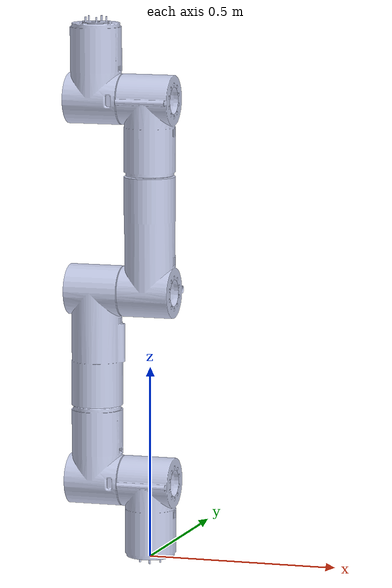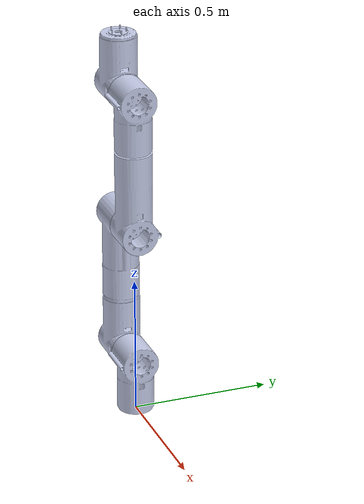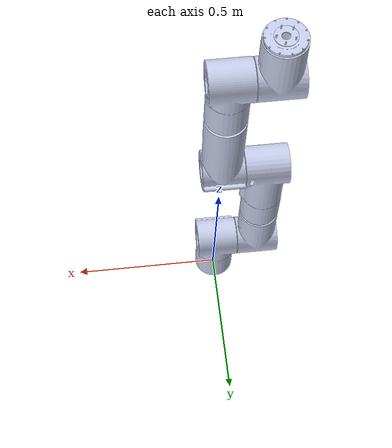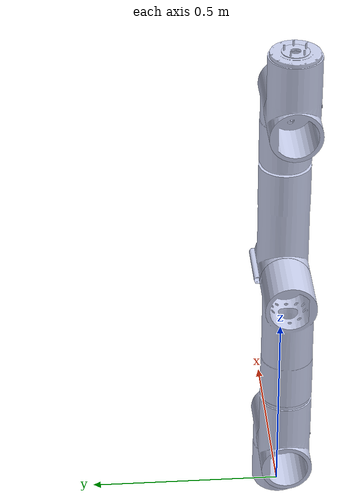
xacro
<?xml version="1.0" encoding="utf-8"?>
<robot name="mglimb_7dof" xmlns:xacro="http://www.ros.org/wiki/xacro">

<xacro:property name="ThisPackage" value="urdf_packer" />
<xacro:property name="Filename" value="mglimb_7dof" />
<xacro:property name="UrdfDataPath" value="package://${ThisPackage}/urdf/${Filename}" />
<xacro:property name="MeshPath" value="package://${ThisPackage}/meshes/${Filename}" />

  <material name="Black">
    <color rgba="0.2 0.2 0.2 0.7"/>
  </material>
  <material name="White">
    <color rgba="1.0 1.0 1.0 1.0"/>
  </material>
  <material name="Silver">
    <color rgba="0.653 0.653 0.653 1.0"/>
  </material>

  <link
  name="base_plug">
  </link>
  <joint
    name="basefix"
    type="fixed">
    <origin
      xyz="0 0 0"
      rpy="3.1416 0 0" />
    <parent
      link="base_plug" />
    <child
      link="eef1_link" />
  </joint>

  <link
    name="eef1_link">
    <inertial>
      <origin
        xyz="1.29013074179555E-07 7.84510574497553E-08 -0.00276488294745968"
        rpy="0 0 0" />
      <mass
        value="0.023752994516635" />
      <inertia
        ixx="7.776725833029E-06"
        ixy="1.92793729442485E-11"
        ixz="1.69361842652945E-11"
        iyy="7.77667085139128E-06"
        iyz="1.27496652782608E-11"
        izz="1.51480461432004E-05" />
    </inertial>
    <visual>
      <origin
        xyz="0 0 0"
        rpy="0 0 0" />
      <geometry>
        <mesh
          filename="${MeshPath}/eef1_link.STL" />
      </geometry>
      <material
        name="Black">
        <color
          rgba="0.792156862745098 0.819607843137255 0.933333333333333 1" />
      </material>
    </visual>
    <collision>
      <origin
        xyz="0 0 0"
        rpy="0 0 0" />
      <geometry>
        <mesh
          filename="${MeshPath}/eef1_link.STL" />
      </geometry>
    </collision>
  </link>
  <link
    name="link1">
    <inertial>
      <origin
        xyz="-0.000851392261437255 0.000502306553466234 -0.13561634672842"
        rpy="0 0 0" />
      <mass
        value="0.782146942513576" />
      <inertia
        ixx="0.00388029619747055"
        ixy="4.22018600087899E-06"
        ixz="0.000269392183701513"
        iyy="0.00361703953129617"
        iyz="2.03354036798432E-05"
        izz="0.00258877392358645" />
    </inertial>
    <visual>
      <origin
        xyz="0 0 0"
        rpy="0 0 0" />
      <geometry>
        <mesh
          filename="${MeshPath}/link1.STL" />
      </geometry>
      <material
        name="White">
        <color
          rgba="0.792156862745098 0.819607843137255 0.933333333333333 1" />
      </material>
    </visual>
    <collision>
      <origin
        xyz="0 0 0"
        rpy="0 0 0" />
      <geometry>
        <mesh
          filename="${MeshPath}/link1.STL" />
      </geometry>
    </collision>
  </link>
  <joint
    name="joint1"
    type="revolute">
    <origin
      xyz="0 0 0"
      rpy="0 0 0" />
    <parent
      link="eef1_link" />
    <child
      link="link1" />
    <axis
      xyz="0 0 1" />
    <limit
      lower="-3.141592"
      upper="3.141592"
      effort="10"
      velocity="10" />
  </joint>
  <link
    name="link2">
    <inertial>
      <origin
        xyz="0.0408105003144926 0.00297674224269077 0.0677917338127515"
        rpy="0 0 0" />
      <mass
        value="1.16776561398528" />
      <inertia
        ixx="0.00406810645044146"
        ixy="0.000102518031396251"
        ixz="-0.000124392967771108"
        iyy="0.00571443256075551"
        iyz="-9.48145811984983E-06"
        izz="0.00585291286623905" />
    </inertial>
    <visual>
      <origin
        xyz="0 0 0"
        rpy="0 0 0" />
      <geometry>
        <mesh
          filename="${MeshPath}/link2.STL" />
      </geometry>
      <material
        name="White">
        <color
          rgba="0.792156862745098 0.819607843137255 0.933333333333333 1" />
      </material>
    </visual>
    <collision>
      <origin
        xyz="0 0 0"
        rpy="0 0 0" />
      <geometry>
        <mesh
          filename="${MeshPath}/link2.STL" />
      </geometry>
    </collision>
  </link>
  <joint
    name="joint2"
    type="revolute">
    <origin
      xyz="-0.0725 0 -0.1971"
      rpy="3.1416 1.5708 0" />
    <parent
      link="link1" />
    <child
      link="link2" />
    <axis
      xyz="0 0 1" />
    <limit
      lower="-3.141592"
      upper="3.141592"
      effort="10"
      velocity="10" />
  </joint>
  <link
    name="link3">
    <inertial>
      <origin
        xyz="-0.00214588509326616 0.00119225730369518 0.162842874508915"
        rpy="0 0 0" />
      <mass
        value="2.91559633558469" />
      <inertia
        ixx="0.0148569440007064"
        ixy="-5.80390603936369E-06"
        ixz="0.000239584257521375"
        iyy="0.0147607356210609"
        iyz="-0.000244855992056839"
        izz="0.00922276007974285" />
    </inertial>
    <visual>
      <origin
        xyz="0 0 0"
        rpy="0 0 0" />
      <geometry>
        <mesh
          filename="${MeshPath}/link3.STL" />
      </geometry>
      <material
        name="White">
        <color
          rgba="0.792156862745098 0.819607843137255 0.933333333333333 1" />
      </material>
    </visual>
    <collision>
      <origin
        xyz="0 0 0"
        rpy="0 0 0" />
      <geometry>
        <mesh
          filename="${MeshPath}/link3.STL" />
      </geometry>
    </collision>
  </link>
  <joint
    name="joint3"
    type="revolute">
    <origin
      xyz="0.1971 0 0.0726"
      rpy="3.1415 -1.5708 0" />
    <parent
      link="link2" />
    <child
      link="link3" />
    <axis
      xyz="0 0 1" />
    <limit
      lower="-3.141592"
      upper="3.141592"
      effort="10"
      velocity="10" />
  </joint>
  <link
    name="link4">
    <inertial>
      <origin
        xyz="-0.16149366533282 -0.000165216661479077 -0.0722429668582283"
        rpy="0 0 0" />
      <mass
        value="2.49177490349903" />
      <inertia
        ixx="0.00765185163933554"
        ixy="3.84544984579443E-05"
        ixz="0.000481031406372384"
        iyy="0.0101234880737109"
        iyz="2.68345266050994E-06"
        izz="0.0103594575433918" />
    </inertial>
    <visual>
      <origin
        xyz="0 0 0"
        rpy="0 0 0" />
      <geometry>
        <mesh
          filename="${MeshPath}/link4.STL" />
      </geometry>
      <material
        name="White">
        <color
          rgba="0.792156862745098 0.819607843137255 0.933333333333333 1" />
      </material>
    </visual>
    <collision>
      <origin
        xyz="0 0 0"
        rpy="0 0 0" />
      <geometry>
        <mesh
          filename="${MeshPath}/link4.STL" />
      </geometry>
    </collision>
  </link>
  <joint
    name="joint4"
    type="revolute">
    <origin
      xyz="-0.0726 0 0.3026"
      rpy="0 1.5708 0" />
    <parent
      link="link3" />
    <child
      link="link4" />
    <axis
      xyz="0 0 1" />
    <limit
      lower="-3.141592"
      upper="3.141592"
      effort="10"
      velocity="10" />
  </joint>
  <link
    name="link5">
    <inertial>
      <origin
        xyz="-0.000851392261433597 0.000502306553460058 -0.13561634672842"
        rpy="0 0 0" />
      <mass
        value="0.782146942513575" />
      <inertia
        ixx="0.00388029619747055"
        ixy="4.22018600087864E-06"
        ixz="0.000269392183701513"
        iyy="0.00361703953129617"
        iyz="2.03354036798419E-05"
        izz="0.00258877392358645" />
    </inertial>
    <visual>
      <origin
        xyz="0 0 0"
        rpy="0 0 0" />
      <geometry>
        <mesh
          filename="${MeshPath}/link5.STL" />
      </geometry>
      <material
        name="White">
        <color
          rgba="0.792156862745098 0.819607843137255 0.933333333333333 1" />
      </material>
    </visual>
    <collision>
      <origin
        xyz="0 0 0"
        rpy="0 0 0" />
      <geometry>
        <mesh
          filename="${MeshPath}/link5.STL" />
      </geometry>
    </collision>
  </link>
  <joint
    name="joint5"
    type="revolute">
    <origin
      xyz="-0.3026 0 -0.0725"
      rpy="0 1.5708 0" />
    <parent
      link="link4" />
    <child
      link="link5" />
    <axis
      xyz="0 0 1" />
    <limit
      lower="-3.141592"
      upper="3.141592"
      effort="10"
      velocity="10" />
  </joint>
  <link
    name="link6">
    <inertial>
      <origin
        xyz="0.0408105002632231 0.00297674223999824 0.0677917336264018"
        rpy="0 0 0" />
      <mass
        value="1.16776561679624" />
      <inertia
        ixx="0.00406810645112587"
        ixy="0.000102518031254211"
        ixz="-0.000124392967409067"
        iyy="0.00571443256199961"
        iyz="-9.48145808718355E-06"
        izz="0.00585291286795255" />
    </inertial>
    <visual>
      <origin
        xyz="0 0 0"
        rpy="0 0 0" />
      <geometry>
        <mesh
          filename="${MeshPath}/link6.STL" />
      </geometry>
      <material
        name="White">
        <color
          rgba="0.792156862745098 0.819607843137255 0.933333333333333 1" />
      </material>
    </visual>
    <collision>
      <origin
        xyz="0 0 0"
        rpy="0 0 0" />
      <geometry>
        <mesh
          filename="${MeshPath}/link6.STL" />
      </geometry>
    </collision>
  </link>
  <joint
    name="joint6"
    type="revolute">
    <origin
      xyz="-0.0725 0 -0.1971"
      rpy="3.1416 1.5708 0" />
    <parent
      link="link5" />
    <child
      link="link6" />
    <axis
      xyz="0 0 1" />
    <limit
      lower="-3.141592"
      upper="3.141592"
      effort="10"
      velocity="10" />
  </joint>
  <link
    name="eef2_link">
    <inertial>
      <origin
        xyz="1.30452130375769E-07 7.93899120121129E-08 -0.00276488244597672"
        rpy="0 0 0" />
      <mass
        value="0.0237529928194326" />
      <inertia
        ixx="7.77672546197223E-06"
        ixy="1.97627851852036E-11"
        ixz="1.71710815737971E-11"
        iyy="7.77667005048947E-06"
        iyz="1.28942882663125E-11"
        izz="1.51480451084006E-05" />
    </inertial>
    <visual>
      <origin
        xyz="0 0 0"
        rpy="0 0 0" />
      <geometry>
        <mesh
          filename="${MeshPath}/eef2_link.STL" />
      </geometry>
      <material
        name="Black">
        <color
          rgba="0.792156862745098 0.819607843137255 0.933333333333333 1" />
      </material>
    </visual>
    <collision>
      <origin
        xyz="0 0 0"
        rpy="0 0 0" />
      <geometry>
        <mesh
          filename="${MeshPath}/eef2_link.STL" />
      </geometry>
    </collision>
  </link>
  <joint
    name="eef2_joint"
    type="revolute">
    <origin
      xyz="0.1971 0 0.0726"
      rpy="0 1.5708 0" />
    <parent
      link="link6" />
    <child
      link="eef2_link" />
    <axis
      xyz="0 0 1" />
    <limit
      lower="-3.141592"
      upper="3.141592"
      effort="10"
      velocity="10" />
  </joint>
  <link
  name="end_plug">
  </link>
  <joint
    name="eefix"
    type="fixed">
    <origin
      xyz="0 0 0"
      rpy="0 1.57 0" />
    <parent
      link="eef2_link" />
    <child
      link="end_plug" />
  </joint>
</robot>
